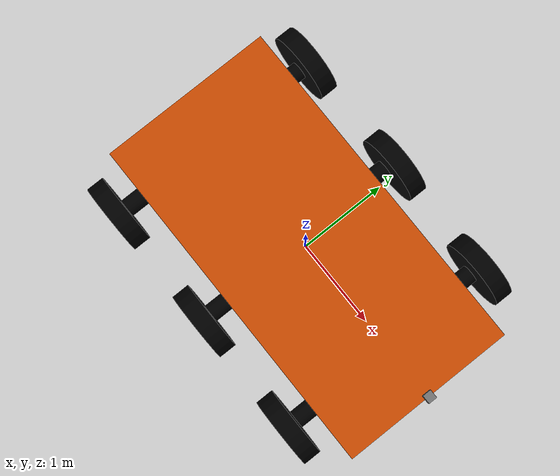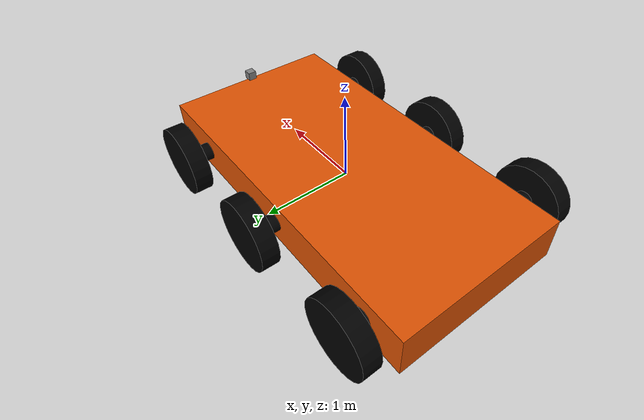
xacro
<?xml version="1.0"?>
<robot name="robot" xmlns:xacro="http://www.ros.org/wiki/xacro">
  <link name="base_footprint"/>
  <joint name="base_joint" type="fixed">
    <parent link="base_footprint"/>
    <child link="base_link"/>
    <origin xyz="0 0 0" rpy="0 0 0"/>
  </joint>
  <link name="base_link">
    <visual>
      <origin xyz="0 0 0" rpy="0 0 0"/>
      <geometry>
        <box size="4 2 0.5"/>
      </geometry>
      <material name="base_link-material">
        <color rgba="0.8713671191959567 0.3231432091022285 0.012286488353353374 1"/>
        <script>
          <uri>model://media/materials/scripts/gazebo.material</uri>
          <name>Gazebo/Orange</name>
        </script>
      </material>
    </visual>
    <collision>
      <origin xyz="0 0 0" rpy="0 0 0"/>
      <geometry>
        <box size="4 2 0.5"/>
      </geometry>
      <surface>
        <contact>
          <ode>
            <kp>100000</kp>
            <kd>10.0</kd>
          </ode>
        </contact>
        <friction>
          <ode>
            <mu>100.0</mu>
            <mu2>50.0</mu2>
          </ode>
        </friction>
      </surface>
    </collision>
    <inertial>
      <origin xyz="0 0 0" rpy="0 0 0"/>
      <mass value="100"/>
      <inertia ixx="35.0" ixy="0" ixz="0" iyy="95.0" iyz="0" izz="105.0"/>
    </inertial>
  </link>

  <joint name="base_link_to_front_left_steer" type="revolute">
    <parent link="base_link"/>
    <child link="front_left_steer_link"/>
    <origin xyz="1.3230052887669985 1.265027525157693 0" rpy="0 0 0"/>
    <axis xyz="0 0 1"/>
    <limit lower="-0.7854" upper="0.7854" effort="10" velocity="2.0"/>
    <dynamics damping="5.0" friction="0.1"/>
  </joint>
  <link name="front_left_steer_link">
    <visual>
      <origin xyz="0 0 0" rpy="0 0 0"/>
      <geometry>
        <box size="0.01 0.01 0.01"/>
      </geometry>
      <material name="front_left_steer-material">
        <color rgba="0.6 0.3 0.1 1"/>
        <script>
          <uri>model://media/materials/scripts/gazebo.material</uri>
          <name>Gazebo/Blue</name>
        </script>
      </material>
    </visual>
    <inertial>
      <origin xyz="0 0 0" rpy="0 0 0"/>
      <mass value="0.5"/>
      <inertia ixx="0.005" ixy="0" ixz="0" iyy="0.005" iyz="0" izz="0.005"/>
    </inertial>
  </link>
  <joint name="front_left_steer_to_wheel" type="continuous">
    <parent link="front_left_steer_link"/>
    <child link="cylinder0"/>
    <origin xyz="0 0 0" rpy="0 0 0"/>
    <axis xyz="0 1 0"/>
    <limit effort="10" velocity="10"/>
    <hardwareInterface>EffortJointInterface</hardwareInterface>
    <dynamics damping="0.5" friction="0.1"/>
  </joint>
  <link name="cylinder0">
    <visual>
      <origin xyz="0 0 0" rpy="-1.5708 0 0"/>
      <geometry>
        <cylinder radius="0.4" length="0.2"/>
      </geometry>
      <material name="cylinder0-material">
        <color rgba="0 0 0 1"/>
        <script>
          <uri>model://media/materials/scripts/gazebo.material</uri>
          <name>Gazebo/Black</name>
        </script>
      </material>
    </visual>
    <collision>
      <origin xyz="0 0 0" rpy="0 0 0"/>
      <geometry>
        <cylinder radius="0.5" length="1"/>
      </geometry>
    </collision>
    <inertial>
      <origin xyz="0 0 0" rpy="0 0 0"/>
      <mass value="5"/>
      <inertia ixx="0.2167" ixy="0" ixz="0" iyy="0.4" iyz="0" izz="0.2167"/>
    </inertial>
  </link>

  <joint name="base_link_to_front_right_steer" type="revolute">
    <parent link="base_link"/>
    <child link="front_right_steer_link"/>
    <origin xyz="1.35287 -1.30825 0" rpy="0 0 0"/>
    <axis xyz="0 0 1"/>
    <limit lower="-0.7854" upper="0.7854" effort="10" velocity="2.0"/>
    <dynamics damping="5.0" friction="0.1"/>
  </joint>
  <link name="front_right_steer_link">
    <visual>
      <origin xyz="0 0 0" rpy="0 0 0"/>
      <geometry>
        <box size="0.01 0.01 0.01"/>
      </geometry>
      <material name="front_right_steer-material">
        <color rgba="0.6 0.3 0.1 1"/>
        <script>
          <uri>model://media/materials/scripts/gazebo.material</uri>
          <name>Gazebo/Blue</name>
        </script>
      </material>
    </visual>
    <inertial>
      <origin xyz="0 0 0" rpy="0 0 0"/>
      <mass value="0.5"/>
      <inertia ixx="0.005" ixy="0" ixz="0" iyy="0.005" iyz="0" izz="0.005"/>
    </inertial>
  </link>
  <joint name="front_right_steer_to_wheel" type="continuous">
    <parent link="front_right_steer_link"/>
    <child link="cylinder3"/>
    <origin xyz="0 0 0" rpy="0 0 0"/>
    <axis xyz="0 1 0"/>
    <limit effort="10" velocity="10"/>
    <hardwareInterface>EffortJointInterface</hardwareInterface>
    <dynamics damping="0.5" friction="0.1"/>
  </joint>
  <link name="cylinder3">
    <visual>
      <origin xyz="0 0 0" rpy="-1.5708 0 0"/>
      <geometry>
        <cylinder radius="0.4" length="0.2"/>
      </geometry>
      <material name="cylinder3-material">
        <color rgba="0 0 0 1"/>
        <script>
          <uri>model://media/materials/scripts/gazebo.material</uri>
          <name>Gazebo/Black</name>
        </script>
      </material>
    </visual>
    <collision>
      <origin xyz="0 0 0" rpy="0 0 0"/>
      <geometry>
        <cylinder radius="0.5" length="1"/>
      </geometry>
    </collision>
    <inertial>
      <origin xyz="0 0 0" rpy="0 0 0"/>
      <mass value="5"/>
      <inertia ixx="0.2167" ixy="0" ixz="0" iyy="0.4" iyz="0" izz="0.2167"/>
    </inertial>
  </link>

  <joint name="base_link_to_cylinder1" type="continuous">
    <parent link="base_link"/>
    <child link="cylinder1"/>
    <origin xyz="-0.08616 1.27160 0" rpy="0 0 0"/>
    <axis xyz="0 1 0"/>
    <limit effort="10" velocity="10"/>
    <hardwareInterface>EffortJointInterface</hardwareInterface>
    <dynamics damping="0.5" friction="0.1"/>
  </joint>
  <link name="cylinder1">
    <visual>
      <origin xyz="0 0 0" rpy="-1.5708 0 0"/>
      <geometry>
        <cylinder radius="0.4" length="0.2"/>
      </geometry>
      <material name="cylinder1-material">
        <color rgba="0 0 0 1"/>
        <script>
          <uri>model://media/materials/scripts/gazebo.material</uri>
          <name>Gazebo/Black</name>
        </script>
      </material>
    </visual>
    <collision>
      <origin xyz="0 0 0" rpy="0 0 0"/>
      <geometry>
        <cylinder radius="0.5" length="1"/>
      </geometry>
    </collision>
    <inertial>
      <origin xyz="0 0 0" rpy="0 0 0"/>
      <mass value="5"/>
      <inertia ixx="0.2167" ixy="0" ixz="0" iyy="0.4" iyz="0" izz="0.2167"/>
    </inertial>
  </link>

  <joint name="base_link_to_cylinder2" type="continuous">
    <parent link="base_link"/>
    <child link="cylinder2"/>
    <origin xyz="-1.52679 1.23114 0" rpy="0 0 0"/>
    <axis xyz="0 1 0"/>
    <limit effort="10" velocity="10"/>
    <hardwareInterface>EffortJointInterface</hardwareInterface>
    <dynamics damping="0.5" friction="0.1"/>
  </joint>
  <link name="cylinder2">
    <visual>
      <origin xyz="0 0 0" rpy="-1.5708 0 0"/>
      <geometry>
        <cylinder radius="0.4" length="0.2"/>
      </geometry>
      <material name="cylinder2-material">
        <color rgba="0 0 0 1"/>
        <script>
          <uri>model://media/materials/scripts/gazebo.material</uri>
          <name>Gazebo/Black</name>
        </script>
      </material>
    </visual>
    <collision>
      <origin xyz="0 0 0" rpy="0 0 0"/>
      <geometry>
        <cylinder radius="0.5" length="1"/>
      </geometry>
    </collision>
    <inertial>
      <origin xyz="0 0 0" rpy="0 0 0"/>
      <mass value="5"/>
      <inertia ixx="0.2167" ixy="0" ixz="0" iyy="0.4" iyz="0" izz="0.2167"/>
    </inertial>
  </link>

  <joint name="base_link_to_cylinder4" type="continuous">
    <parent link="base_link"/>
    <child link="cylinder4"/>
    <origin xyz="-0.04911 -1.31088 0" rpy="0 0 0"/>
    <axis xyz="0 1 0"/>
    <limit effort="10" velocity="10"/>
    <hardwareInterface>EffortJointInterface</hardwareInterface>
    <dynamics damping="0.5" friction="0.1"/>
  </joint>
  <link name="cylinder4">
    <visual>
      <origin xyz="0 0 0" rpy="-1.5708 0 0"/>
      <geometry>
        <cylinder radius="0.4" length="0.2"/>
      </geometry>
      <material name="cylinder4-material">
        <color rgba="0 0 0 1"/>
        <script>
          <uri>model://media/materials/scripts/gazebo.material</uri>
          <name>Gazebo/Black</name>
        </script>
      </material>
    </visual>
    <collision>
      <origin xyz="0 0 0" rpy="0 0 0"/>
      <geometry>
        <cylinder radius="0.5" length="1"/>
      </geometry>
    </collision>
    <inertial>
      <origin xyz="0 0 0" rpy="0 0 0"/>
      <mass value="5"/>
      <inertia ixx="0.2167" ixy="0" ixz="0" iyy="0.4" iyz="0" izz="0.2167"/>
    </inertial>
  </link>

  <joint name="base_link_to_cylinder5" type="continuous">
    <parent link="base_link"/>
    <child link="cylinder5"/>
    <origin xyz="0 0 0" rpy="0 0 0"/>
    <axis xyz="0 1 0"/>
    <limit effort="10" velocity="10"/>
    <hardwareInterface>EffortJointInterface</hardwareInterface>
    <dynamics damping="0.5" friction="0.1"/>
  </joint>
  <link name="cylinder5">
    <visual>
      <origin xyz="0 0 0" rpy="1.5708 0 0"/>
      <geometry>
        <cylinder radius="0.1" length="0.3"/>
      </geometry>
      <material name="cylinder5-material">
        <color rgba="0 0 0 1"/>
        <script>
          <uri>model://media/materials/scripts/gazebo.material</uri>
          <name>Gazebo/Black</name>
        </script>
      </material>
    </visual>
    <collision>
      <origin xyz="0 0 0" rpy="0 0 0"/>
      <geometry>
        <cylinder radius="0.5" length="1"/>
      </geometry>
    </collision>
    <inertial>
      <origin xyz="0 0 0" rpy="0 0 0"/>
      <mass value="5"/>
      <inertia ixx="0.05" ixy="0" ixz="0" iyy="0.025" iyz="0" izz="0.05"/>
    </inertial>
  </link>

  <joint name="base_link_to_cylinder6" type="continuous">
    <parent link="base_link"/>
    <child link="cylinder6"/>
    <origin xyz="-0.06594 -1.11488 0" rpy="0 0 0"/>
    <axis xyz="0 1 0"/>
    <limit effort="10" velocity="10"/>
    <dynamics damping="0.5" friction="0.1"/>
  </joint>
  <link name="cylinder6">
    <visual>
      <origin xyz="0 0 0" rpy="1.5708 0 0"/>
      <geometry>
        <cylinder radius="0.1" length="0.3"/>
      </geometry>
      <material name="cylinder6-material">
        <color rgba="0 0 0 1"/>
        <script>
          <uri>model://media/materials/scripts/gazebo.material</uri>
          <name>Gazebo/Black</name>
        </script>
      </material>
    </visual>
    <collision>
      <origin xyz="0 0 0" rpy="0 0 0"/>
      <geometry>
        <cylinder radius="0.5" length="1"/>
      </geometry>
    </collision>
    <inertial>
      <origin xyz="0 0 0" rpy="0 0 0"/>
      <mass value="5"/>
      <inertia ixx="0.05" ixy="0" ixz="0" iyy="0.025" iyz="0" izz="0.05"/>
    </inertial>
  </link>

  <joint name="base_link_to_cylinder7" type="continuous">
    <parent link="base_link"/>
    <child link="cylinder7"/>
    <origin xyz="1.34329 -1.04882 0" rpy="0 0 0"/>
    <axis xyz="0 1 0"/>
    <limit effort="10" velocity="10"/>
    <dynamics damping="0.5" friction="0.1"/>
  </joint>
  <link name="cylinder7">
    <visual>
      <origin xyz="0 0 0" rpy="1.5708 0 0"/>
      <geometry>
        <cylinder radius="0.1" length="0.3"/>
      </geometry>
      <material name="cylinder7-material">
        <color rgba="0 0 0 1"/>
        <script>
          <uri>model://media/materials/scripts/gazebo.material</uri>
          <name>Gazebo/Black</name>
        </script>
      </material>
    </visual>
    <collision>
      <origin xyz="0 0 0" rpy="0 0 0"/>
      <geometry>
        <cylinder radius="0.5" length="1"/>
      </geometry>
    </collision>
    <inertial>
      <origin xyz="0 0 0" rpy="0 0 0"/>
      <mass value="5"/>
      <inertia ixx="0.05" ixy="0" ixz="0" iyy="0.025" iyz="0" izz="0.05"/>
    </inertial>
  </link>

  <joint name="base_link_to_cylinder8" type="continuous">
    <parent link="base_link"/>
    <child link="cylinder8"/>
    <origin xyz="-0.122244 1.10651 0" rpy="0 0 0"/>
    <axis xyz="0 1 0"/>
    <limit effort="10" velocity="10"/>
    <dynamics damping="0.5" friction="0.1"/>
  </joint>
  <link name="cylinder8">
    <visual>
      <origin xyz="0 0 0" rpy="1.5708 0 0"/>
      <geometry>
        <cylinder radius="0.1" length="0.3"/>
      </geometry>
      <material name="cylinder8-material">
        <color rgba="0 0 0 1"/>
        <script>
          <uri>model://media/materials/scripts/gazebo.material</uri>
          <name>Gazebo/Black</name>
        </script>
      </material>
    </visual>
    <collision>
      <origin xyz="0 0 0" rpy="0 0 0"/>
      <geometry>
        <cylinder radius="0.5" length="1"/>
      </geometry>
    </collision>
    <inertial>
      <origin xyz="0 0 0" rpy="0 0 0"/>
      <mass value="5"/>
      <inertia ixx="0.05" ixy="0" ixz="0" iyy="0.025" iyz="0" izz="0.05"/>
    </inertial>
  </link>

  <joint name="base_link_to_cylinder9" type="continuous">
    <parent link="base_link"/>
    <child link="cylinder9"/>
    <origin xyz="-1.51109 1.14690 0" rpy="0 0 0"/>
    <axis xyz="0 1 0"/>
    <limit effort="10" velocity="10"/>
    <dynamics damping="0.5" friction="0.1"/>
  </joint>
  <link name="cylinder9">
    <visual>
      <origin xyz="0 0 0" rpy="1.5708 0 0"/>
      <geometry>
        <cylinder radius="0.1" length="0.3"/>
      </geometry>
      <material name="cylinder9-material">
        <color rgba="0 0 0 1"/>
        <script>
          <uri>model://media/materials/scripts/gazebo.material</uri>
          <name>Gazebo/Black</name>
        </script>
      </material>
    </visual>
    <collision>
      <origin xyz="0 0 0" rpy="0 0 0"/>
      <geometry>
        <cylinder radius="0.5" length="1"/>
      </geometry>
    </collision>
    <inertial>
      <origin xyz="0 0 0" rpy="0 0 0"/>
      <mass value="5"/>
      <inertia ixx="0.05" ixy="0" ixz="0" iyy="0.025" iyz="0" izz="0.05"/>
    </inertial>
  </link>

  <joint name="base_link_to_cylinder10" type="continuous">
    <parent link="base_link"/>
    <child link="cylinder10"/>
    <origin xyz="1.29847 1.13963 0" rpy="0 0 0"/>
    <axis xyz="0 1 0"/>
    <limit effort="10" velocity="10"/>
    <dynamics damping="0.5" friction="0.1"/>
  </joint>
  <link name="cylinder10">
    <visual>
      <origin xyz="0 0 0" rpy="1.5708 0 0"/>
      <geometry>
        <cylinder radius="0.1" length="0.3"/>
      </geometry>
      <material name="cylinder10-material">
        <color rgba="0 0 0 1"/>
        <script>
          <uri>model://media/materials/scripts/gazebo.material</uri>
          <name>Gazebo/Black</name>
        </script>
      </material>
    </visual>
    <collision>
      <origin xyz="0 0 0" rpy="0 0 0"/>
      <geometry>
        <cylinder radius="0.5" length="1"/>
      </geometry>
    </collision>
    <inertial>
      <origin xyz="0 0 0" rpy="0 0 0"/>
      <mass value="5"/>
      <inertia ixx="0.05" ixy="0" ixz="0" iyy="0.025" iyz="0" izz="0.05"/>
    </inertial>
  </link>

  <joint name="base_link_to_cylinder11" type="continuous">
    <parent link="base_link"/>
    <child link="cylinder11"/>
    <origin xyz="-1.4936 -1.31376 0" rpy="0 0 0"/>
    <axis xyz="0 1 0"/>
    <limit effort="10" velocity="10"/>
    <dynamics damping="0.5" friction="0.1"/>
  </joint>
  <link name="cylinder11">
    <visual>
      <origin xyz="0 0 0" rpy="-1.5708 0 0"/>
      <geometry>
        <cylinder radius="0.4" length="0.2"/>
      </geometry>
      <material name="cylinder11-material">
        <color rgba="0 0 0 1"/>
        <script>
          <uri>model://media/materials/scripts/gazebo.material</uri>
          <name>Gazebo/Black</name>
        </script>
      </material>
    </visual>
    <collision>
      <origin xyz="0 0 0" rpy="0 0 0"/>
      <geometry>
        <cylinder radius="0.5" length="1"/>
      </geometry>
    </collision>
    <inertial>
      <origin xyz="0 0 0" rpy="0 0 0"/>
      <mass value="5"/>
      <inertia ixx="0.2167" ixy="0" ixz="0" iyy="0.4" iyz="0" izz="0.2167"/>
    </inertial>
  </link>

  <joint name="base_link_to_cylinder12" type="continuous">
    <parent link="base_link"/>
    <child link="cylinder12"/>
    <origin xyz="-1.48469 -1.10029 0" rpy="0 0 0"/>
    <axis xyz="0 1 0"/>
    <limit effort="10" velocity="10"/>
    <dynamics damping="0.5" friction="0.1"/>
  </joint>
  <link name="cylinder12">
    <visual>
      <origin xyz="0 0 0" rpy="1.5708 0 0"/>
      <geometry>
        <cylinder radius="0.1" length="0.3"/>
      </geometry>
      <material name="cylinder12-material">
        <color rgba="0 0 0 1"/>
        <script>
          <uri>model://media/materials/scripts/gazebo.material</uri>
          <name>Gazebo/Black</name>
        </script>
      </material>
    </visual>
    <collision>
      <origin xyz="0 0 0" rpy="0 0 0"/>
      <geometry>
        <cylinder radius="0.5" length="1"/>
      </geometry>
    </collision>
    <inertial>
      <origin xyz="0 0 0" rpy="0 0 0"/>
      <mass value="5"/>
      <inertia ixx="0.05" ixy="0" ixz="0" iyy="0.025" iyz="0" izz="0.05"/>
    </inertial>
  </link>

  <joint name="base_link_to_camera" type="fixed">
    <parent link="base_link"/>
    <child link="camera_link"/>
    <origin xyz="2 0 0.3" rpy="0 0 0"/>
  </joint>
  <link name="camera_link">
    <visual>
      <origin xyz="0 0 0" rpy="0 0 0"/>
      <geometry>
        <box size="0.1 0.1 0.1"/>
      </geometry>
      <material name="camera_material">
        <color rgba="0.5 0.5 0.5 1"/>
        <script>
          <uri>model://media/materials/scripts/gazebo.material</uri>
          <name>Gazebo/Gray</name>
        </script>
      </material>
    </visual>
    <collision>
      <origin xyz="0 0 0" rpy="0 0 0"/>
      <geometry>
        <box size="0.1 0.1 0.1"/>
      </geometry>
    </collision>
    <inertial>
      <origin xyz="0 0 0" rpy="0 0 0"/>
      <mass value="1"/>
      <inertia ixx="0.01" ixy="0" ixz="0" iyy="0.01" iyz="0" izz="0.01"/>
    </inertial>
  </link>
  <gazebo reference="camera_link">
    <sensor type="camera" name="camera_sensor">
      <always_on>true</always_on>
      <update_rate>10</update_rate>
      <camera>
        <horizontal_fov>1.047</horizontal_fov>
        <image>
          <width>640</width>
          <height>480</height>
          <format>R8G8B8</format>
        </image>
        <clip>
          <near>0.1</near>
          <far>100</far>
        </clip>
      </camera>
      <plugin name="gazebo_ros_camera" filename="libgazebo_ros_camera.so">
        <ros>
          <namespace>/camera</namespace>
          <remapping>image_raw:=/camera/image_raw</remapping>
          <remapping>camera_info:=/camera/camera_info</remapping>
        </ros>
        <frameName>camera_link</frameName>
        <cameraName>camera</cameraName>
      </plugin>
    </sensor>
  </gazebo>

  <joint name="base_link_to_laser" type="fixed">
    <parent link="base_link"/>
    <child link="laser_link"/>
    <origin xyz="2.0 0 0.3" rpy="0 0 0"/>
  </joint>
  <link name="laser_link">
    <visual>
      <origin xyz="0 0 0" rpy="0 0 0"/>
      <geometry>
        <box size="0.1 0.1 0.1"/>
      </geometry>
      <material name="laser_material">
        <color rgba="1 1 1 1"/>
      </material>
    </visual>
    <collision>
      <origin xyz="0 0 0" rpy="0 0 0"/>
      <geometry>
        <box size="0.1 0.1 0.1"/>
      </geometry>
    </collision>
    <inertial>
      <origin xyz="0 0 0" rpy="0 0 0"/>
      <mass value="0.1"/>
      <inertia ixx="0.01" ixy="0" ixz="0" iyy="0.01" iyz="0" izz="0.01"/>
    </inertial>
  </link>
  <gazebo reference="laser_link">
    <sensor type="ray" name="laser_sensor">
      <always_on>true</always_on>
      <update_rate>10</update_rate>
      <ray>
        <scan>
          <horizontal>
            <samples>720</samples>
            <resolution>1</resolution>
            <min_angle>-1.57</min_angle>
            <max_angle>1.57</max_angle>
          </horizontal>
        </scan>
        <range>
          <min>0.0</min>
          <max>10.0</max>
        </range>
        <noise>
          <type>gaussian</type>
          <mean>0.0</mean>
          <stddev>0.01</stddev>
        </noise>
      </ray>
      <plugin name="gazebo_ros_laser" filename="libgazebo_ros_laser.so">
        <ros>
          <namespace>/</namespace>
          <remapping>scan:=/scan</remapping>
        </ros>
        <frameName>laser_link</frameName>
        <topicName>/scan</topicName>
      </plugin>
    </sensor>
  </gazebo>

  <gazebo>
    <plugin name="planar_move" filename="libgazebo_ros_planar_move.so">
      <bodyName>base_link</bodyName>
      <topicName>cmd_vel</topicName>
      <maxVelX>1.0</maxVelX>
      <maxVelY>0.0</maxVelY>
      <maxVelTheta>1.0</maxVelTheta>
      <use_vel_topics>true</use_vel_topics>
    </plugin>
  </gazebo>
</robot>
